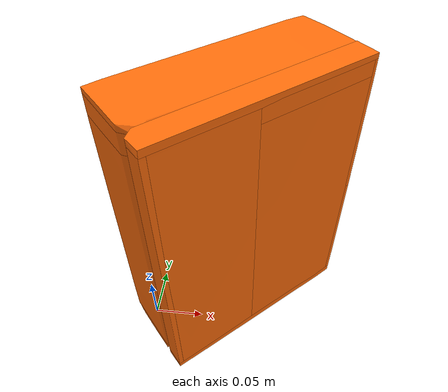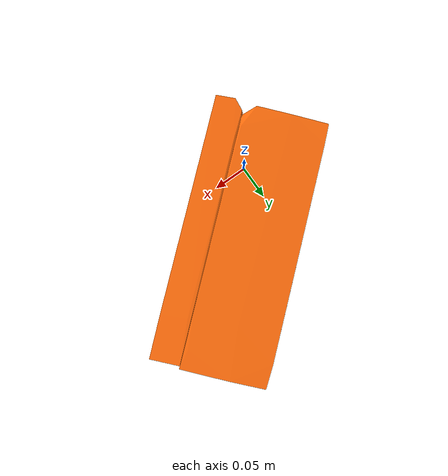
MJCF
<mujoco model="box">
  <compiler angle="radian" meshdir="."/>

  <asset>
    <mesh name="bottom_watertight_tiny_part0" content_type="model/obj" file="bottom_watertight_tiny_part0.obj"/>
    <mesh name="bottom_watertight_tiny_part1" content_type="model/obj" file="bottom_watertight_tiny_part1.obj"/>
    <mesh name="bottom_watertight_tiny_part2" content_type="model/obj" file="bottom_watertight_tiny_part2.obj"/>
    <mesh name="bottom_watertight_tiny_part3" content_type="model/obj" file="bottom_watertight_tiny_part3.obj"/>
    <mesh name="bottom_watertight_tiny_part4" content_type="model/obj" file="bottom_watertight_tiny_part4.obj"/>
    <mesh name="bottom_watertight_tiny_part5" content_type="model/obj" file="bottom_watertight_tiny_part5.obj"/>
    <mesh name="bottom_watertight_tiny_part6" content_type="model/obj" file="bottom_watertight_tiny_part6.obj"/>
    <mesh name="bottom_watertight_tiny_part7" content_type="model/obj" file="bottom_watertight_tiny_part7.obj"/>
    <mesh name="top_watertight_tiny_part0" content_type="model/obj" file="top_watertight_tiny_part0.obj"/>
    <mesh name="top_watertight_tiny_part1" content_type="model/obj" file="top_watertight_tiny_part1.obj"/>
    <mesh name="top_watertight_tiny_part2" content_type="model/obj" file="top_watertight_tiny_part2.obj"/>
    <mesh name="top_watertight_tiny_part3" content_type="model/obj" file="top_watertight_tiny_part3.obj"/>
    <mesh name="top_watertight_tiny_part4" content_type="model/obj" file="top_watertight_tiny_part4.obj"/>
    <mesh name="top_watertight_tiny_part5" content_type="model/obj" file="top_watertight_tiny_part5.obj"/>
    <mesh name="top_watertight_tiny_part6" content_type="model/obj" file="top_watertight_tiny_part6.obj"/>
    <mesh name="top_watertight_tiny_part7" content_type="model/obj" file="top_watertight_tiny_part7.obj"/>
  </asset>

  <worldbody>
    <body name="bottom">
      <inertial pos="0.06401037 0.12394632 0.07233545" mass="0.9641835" fullinertia="0.01740937 0.01853028 0.00957994 -0.00410050 0.00006425 -0.00009072"/>
      <geom type="mesh" rgba="1 0.423529 0.0392157 1" mesh="bottom_watertight_tiny_part0"/>
      <geom type="mesh" rgba="1 0.423529 0.0392157 1" mesh="bottom_watertight_tiny_part1"/>
      <geom type="mesh" rgba="1 0.423529 0.0392157 1" mesh="bottom_watertight_tiny_part2"/>
      <geom type="mesh" rgba="1 0.423529 0.0392157 1" mesh="bottom_watertight_tiny_part3"/>
      <geom type="mesh" rgba="1 0.423529 0.0392157 1" mesh="bottom_watertight_tiny_part4"/>
      <geom type="mesh" rgba="1 0.423529 0.0392157 1" mesh="bottom_watertight_tiny_part5"/>
      <geom type="mesh" rgba="1 0.423529 0.0392157 1" mesh="bottom_watertight_tiny_part6"/>
      <geom type="mesh" rgba="1 0.423529 0.0392157 1" mesh="bottom_watertight_tiny_part7"/>
      <body name="top">
        <inertial pos="0.112183 0.0712945 0.0730111" quat="0.405227 0.00403576 0.00592529 0.914188" mass="0.13" diaginertia="0.00249554 0.00154448 0.000968024"/>
        <joint name="rotation" pos="0 0 0" axis="0 0 -1" range="0 2.6" actuatorfrcrange="-50 50" damping="0.01" frictionloss="0.0" armature="0.1"/>
        <geom type="mesh" rgba="1 0.423529 0.0392157 1" mesh="top_watertight_tiny_part0"/>
        <geom type="mesh" rgba="1 0.423529 0.0392157 1" mesh="top_watertight_tiny_part1"/>
        <geom type="mesh" rgba="1 0.423529 0.0392157 1" mesh="top_watertight_tiny_part2"/>
        <geom type="mesh" rgba="1 0.423529 0.0392157 1" mesh="top_watertight_tiny_part3"/>
        <geom type="mesh" rgba="1 0.423529 0.0392157 1" mesh="top_watertight_tiny_part4"/>
        <geom type="mesh" rgba="1 0.423529 0.0392157 1" mesh="top_watertight_tiny_part5"/>
        <geom type="mesh" rgba="1 0.423529 0.0392157 1" mesh="top_watertight_tiny_part6"/>
        <geom type="mesh" rgba="1 0.423529 0.0392157 1" mesh="top_watertight_tiny_part7"/>
      </body>
    </body>
  </worldbody>
</mujoco>
